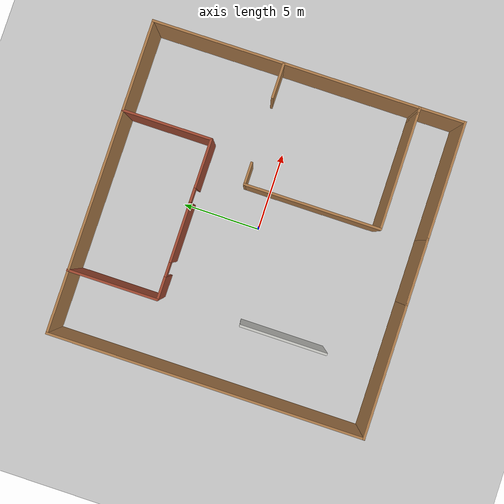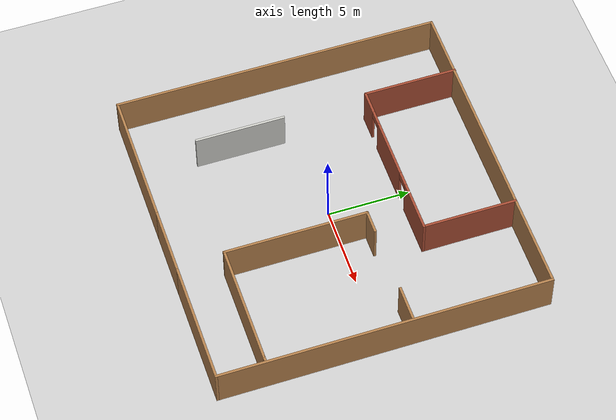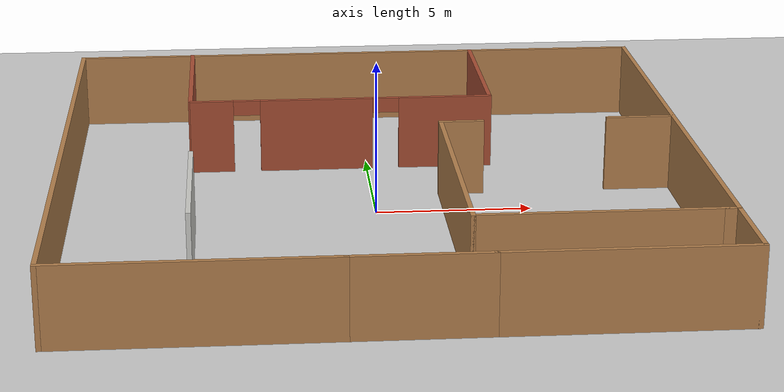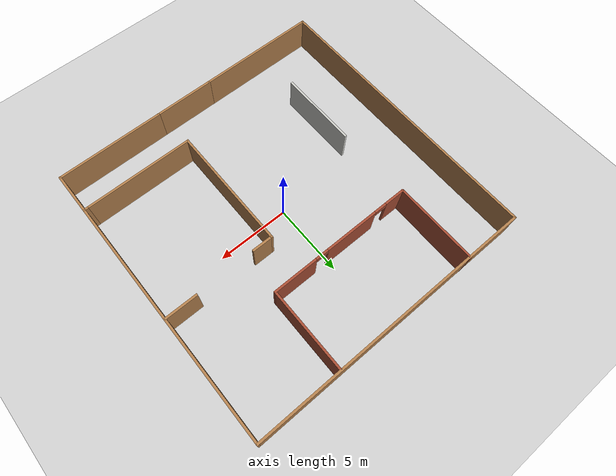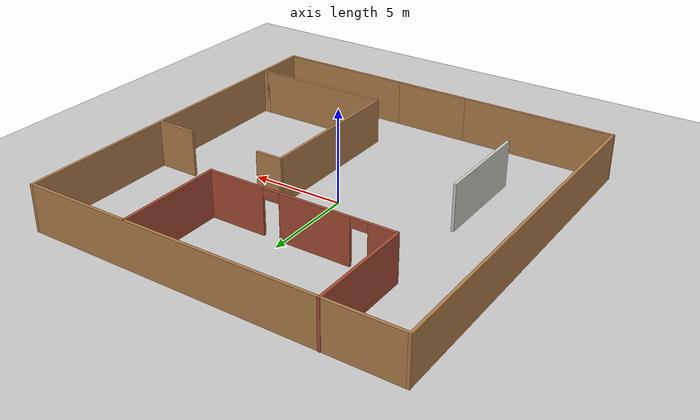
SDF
<?xml version="1.0"?>
<sdf version="1.6">
  <world name="default">

    <include>
      <uri>model://ground_plane</uri>
    </include>

    <include>
      <uri>model://sun</uri>
    </include>

    <scene>
      <shadows>false</shadows>
    </scene>

    <gui fullscreen='0'>
      <camera name='user_camera'>
        <pose frame=''>0.319654 -0.235002 9.29441 0 1.5138 0.009599</pose>
        <view_controller>orbit</view_controller>
        <projection_type>perspective</projection_type>
      </camera>
    </gui>

    <physics type="ode">
      <real_time_update_rate>1000.0</real_time_update_rate>
      <max_step_size>0.001</max_step_size>
      <real_time_factor>1</real_time_factor>
      <ode>
        <solver>
          <type>quick</type>
          <iters>150</iters>
          <precon_iters>0</precon_iters>
          <sor>1.400000</sor>
          <use_dynamic_moi_rescaling>1</use_dynamic_moi_rescaling>
        </solver>
        <constraints>
          <cfm>0.00001</cfm>
          <erp>0.2</erp>
          <contact_max_correcting_vel>2000.000000</contact_max_correcting_vel>
          <contact_surface_layer>0.01000</contact_surface_layer>
        </constraints>
      </ode>
    </physics>

    <model name="turtlebot3_house">
      <static>1</static>
      <include>
        <uri>model://Nxtwave_world</uri>
      </include>
    </model>

  </world>
</sdf>

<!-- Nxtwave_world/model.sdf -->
<sdf version='1.7'>
  <model name='Nxtwave_world'>
    <pose>0.017629 0.087442 0 0 -0 0</pose>
    <link name='Wall_0'>
      <collision name='Wall_0_Collision'>
        <geometry>
          <box>
            <size>4.25 0.15 2.5</size>
          </box>
        </geometry>
        <pose>0 0 1.25 0 -0 0</pose>
      </collision>
      <visual name='Wall_0_Visual'>
        <pose>0 0 1.25 0 -0 0</pose>
        <geometry>
          <box>
            <size>4.25 0.15 2.5</size>
          </box>
        </geometry>
        <material>
          <script>
            <uri>file://media/materials/scripts/gazebo.material</uri>
            <name>Gazebo/Wood</name>
          </script>
          <ambient>1 1 1 1</ambient>
        </material>
        <meta>
          <layer>0</layer>
        </meta>
      </visual>
      <pose>0.475 -9.93637 0 0 -0 0</pose>
    </link>
    <link name='Wall_10'>
      <collision name='Wall_10_Collision'>
        <geometry>
          <box>
            <size>5.75 0.15 2.5</size>
          </box>
        </geometry>
        <pose>0 0 1.25 0 -0 0</pose>
      </collision>
      <visual name='Wall_10_Visual'>
        <pose>0 0 1.25 0 -0 0</pose>
        <geometry>
          <box>
            <size>5.75 0.15 2.5</size>
          </box>
        </geometry>
        <material>
          <script>
            <uri>file://media/materials/scripts/gazebo.material</uri>
            <name>Gazebo/Bricks</name>
          </script>
          <ambient>1 1 1 1</ambient>
        </material>
        <meta>
          <layer>0</layer>
        </meta>
      </visual>
      <pose>-5.98179 7.13638 0 0 -0 1.5708</pose>
    </link>
    <link name='Wall_12'>
      <collision name='Wall_12_Collision'>
        <geometry>
          <box>
            <size>5.75 0.15 2.5</size>
          </box>
        </geometry>
        <pose>0 0 1.25 0 -0 0</pose>
      </collision>
      <visual name='Wall_12_Visual'>
        <pose>0 0 1.25 0 -0 0</pose>
        <geometry>
          <box>
            <size>5.75 0.15 2.5</size>
          </box>
        </geometry>
        <material>
          <script>
            <uri>file://media/materials/scripts/gazebo.material</uri>
            <name>Gazebo/Bricks</name>
          </script>
          <ambient>1 1 1 1</ambient>
        </material>
        <meta>
          <layer>0</layer>
        </meta>
      </visual>
      <pose>4.17051 7.0893 0 0 -0 -1.5708</pose>
    </link>
    <link name='Wall_13'>
      <pose>-0.879492 4.2893 0 0 -0 3.14159</pose>
      <visual name='Wall_13_Visual_0'>
        <pose>-3.53844 0 1.25 0 -0 0</pose>
        <geometry>
          <box>
            <size>3.17312 0.15 2.5</size>
          </box>
        </geometry>
        <material>
          <script>
            <uri>file://media/materials/scripts/gazebo.material</uri>
            <name>Gazebo/Bricks</name>
          </script>
          <ambient>1 1 1 1</ambient>
        </material>
        <meta>
          <layer>0</layer>
        </meta>
      </visual>
      <collision name='Wall_13_Collision_0'>
        <geometry>
          <box>
            <size>3.17312 0.15 2.5</size>
          </box>
        </geometry>
        <pose>-3.53844 0 1.25 0 -0 0</pose>
      </collision>
      <visual name='Wall_13_Visual_1'>
        <pose>0.853569 0 1.25 0 -0 0</pose>
        <geometry>
          <box>
            <size>3.81089 0.15 2.5</size>
          </box>
        </geometry>
        <material>
          <script>
            <uri>file://media/materials/scripts/gazebo.material</uri>
            <name>Gazebo/Bricks</name>
          </script>
          <ambient>1 1 1 1</ambient>
        </material>
        <meta>
          <layer>0</layer>
        </meta>
      </visual>
      <collision name='Wall_13_Collision_1'>
        <geometry>
          <box>
            <size>3.81089 0.15 2.5</size>
          </box>
        </geometry>
        <pose>0.853569 0 1.25 0 -0 0</pose>
      </collision>
      <visual name='Wall_13_Visual_2'>
        <pose>4.39201 0 1.25 0 -0 0</pose>
        <geometry>
          <box>
            <size>1.46598 0.15 2.5</size>
          </box>
        </geometry>
        <material>
          <script>
            <uri>file://media/materials/scripts/gazebo.material</uri>
            <name>Gazebo/Bricks</name>
          </script>
          <ambient>1 1 1 1</ambient>
        </material>
        <meta>
          <layer>0</layer>
        </meta>
      </visual>
      <collision name='Wall_13_Collision_2'>
        <geometry>
          <box>
            <size>1.46598 0.15 2.5</size>
          </box>
        </geometry>
        <pose>4.39201 0 1.25 0 -0 0</pose>
      </collision>
      <visual name='Wall_13_Visual_3'>
        <pose>-1.50188 0 2.25 0 -0 0</pose>
        <geometry>
          <box>
            <size>0.9 0.15 0.5</size>
          </box>
        </geometry>
        <material>
          <script>
            <uri>file://media/materials/scripts/gazebo.material</uri>
            <name>Gazebo/Bricks</name>
          </script>
          <ambient>1 1 1 1</ambient>
        </material>
        <meta>
          <layer>0</layer>
        </meta>
      </visual>
      <collision name='Wall_13_Collision_3'>
        <geometry>
          <box>
            <size>0.9 0.15 0.5</size>
          </box>
        </geometry>
        <pose>-1.50188 0 2.25 0 -0 0</pose>
      </collision>
      <visual name='Wall_13_Visual_4'>
        <pose>3.20902 0 2.25 0 -0 0</pose>
        <geometry>
          <box>
            <size>0.9 0.15 0.5</size>
          </box>
        </geometry>
        <material>
          <script>
            <uri>file://media/materials/scripts/gazebo.material</uri>
            <name>Gazebo/Bricks</name>
          </script>
          <ambient>1 1 1 1</ambient>
        </material>
        <meta>
          <layer>0</layer>
        </meta>
      </visual>
      <collision name='Wall_13_Collision_4'>
        <geometry>
          <box>
            <size>0.9 0.15 0.5</size>
          </box>
        </geometry>
        <pose>3.20902 0 2.25 0 -0 0</pose>
      </collision>
    </link>
    <link name='Wall_15'>
      <collision name='Wall_15_Collision'>
        <geometry>
          <box>
            <size>2.25 0.15 2.5</size>
          </box>
        </geometry>
        <pose>0 0 1.25 0 -0 0</pose>
      </collision>
      <visual name='Wall_15_Visual'>
        <pose>0 0 1.25 0 -0 0</pose>
        <geometry>
          <box>
            <size>2.25 0.15 2.5</size>
          </box>
        </geometry>
        <material>
          <script>
            <uri>file://media/materials/scripts/gazebo.material</uri>
            <name>Gazebo/Wood</name>
          </script>
          <ambient>1 1 1 1</ambient>
        </material>
        <meta>
          <layer>0</layer>
        </meta>
      </visual>
      <pose>8.81064 1.57701 0 0 -0 3.14159</pose>
    </link>
    <link name='Wall_17'>
      <collision name='Wall_17_Collision'>
        <geometry>
          <box>
            <size>8.75 0.15 2.5</size>
          </box>
        </geometry>
        <pose>0 0 1.25 0 -0 0</pose>
      </collision>
      <visual name='Wall_17_Visual'>
        <pose>0 0 1.25 0 -0 0</pose>
        <geometry>
          <box>
            <size>8.75 0.15 2.5</size>
          </box>
        </geometry>
        <material>
          <script>
            <uri>file://media/materials/scripts/gazebo.material</uri>
            <name>Gazebo/Wood</name>
          </script>
          <ambient>1 1 1 1</ambient>
        </material>
        <meta>
          <layer>0</layer>
        </meta>
      </visual>
      <pose>2.21308 -2.76726 0 0 -0 -1.5708</pose>
    </link>
    <link name='Wall_18'>
      <collision name='Wall_18_Collision'>
        <geometry>
          <box>
            <size>7.5 0.15 2.5</size>
          </box>
        </geometry>
        <pose>0 0 1.25 0 -0 0</pose>
      </collision>
      <visual name='Wall_18_Visual'>
        <pose>0 0 1.25 0 -0 0</pose>
        <geometry>
          <box>
            <size>7.5 0.15 2.5</size>
          </box>
        </geometry>
        <material>
          <script>
            <uri>file://media/materials/scripts/gazebo.material</uri>
            <name>Gazebo/Wood</name>
          </script>
          <ambient>1 1 1 1</ambient>
        </material>
        <meta>
          <layer>0</layer>
        </meta>
      </visual>
      <pose>5.88808 -7.06726 0 0 -0 0</pose>
    </link>
    <link name='Wall_19'>
      <collision name='Wall_19_Collision'>
        <geometry>
          <box>
            <size>0.5 0.15 2.5</size>
          </box>
        </geometry>
        <pose>0 0 1.25 0 -0 0</pose>
      </collision>
      <visual name='Wall_19_Visual'>
        <pose>0 0 1.25 0 -0 0</pose>
        <geometry>
          <box>
            <size>0.5 0.15 2.5</size>
          </box>
        </geometry>
        <material>
          <script>
            <uri>file://media/materials/scripts/gazebo.material</uri>
            <name>Gazebo/Wood</name>
          </script>
          <ambient>1 1 1 1</ambient>
        </material>
        <meta>
          <layer>0</layer>
        </meta>
      </visual>
      <pose>9.73808 -7.06726 0 0 -0 0</pose>
    </link>
    <link name='Wall_2'>
      <collision name='Wall_2_Collision'>
        <geometry>
          <box>
            <size>8.5 0.15 2.5</size>
          </box>
        </geometry>
        <pose>0 0 1.25 0 -0 0</pose>
      </collision>
      <visual name='Wall_2_Visual'>
        <pose>0 0 1.25 0 -0 0</pose>
        <geometry>
          <box>
            <size>8.5 0.15 2.5</size>
          </box>
        </geometry>
        <material>
          <script>
            <uri>file://media/materials/scripts/gazebo.material</uri>
            <name>Gazebo/Wood</name>
          </script>
          <ambient>1 1 1 1</ambient>
        </material>
        <meta>
          <layer>0</layer>
        </meta>
      </visual>
      <pose>-5.75 -9.93637 0 0 -0 3.14159</pose>
    </link>
    <link name='Wall_21'>
      <collision name='Wall_21_Collision'>
        <geometry>
          <box>
            <size>1.5 0.15 2.5</size>
          </box>
        </geometry>
        <pose>0 0 1.25 0 -0 0</pose>
      </collision>
      <visual name='Wall_21_Visual'>
        <pose>0 0 1.25 0 -0 0</pose>
        <geometry>
          <box>
            <size>1.5 0.15 2.5</size>
          </box>
        </geometry>
        <material>
          <script>
            <uri>file://media/materials/scripts/gazebo.material</uri>
            <name>Gazebo/Wood</name>
          </script>
          <ambient>1 1 1 1</ambient>
        </material>
        <meta>
          <layer>0</layer>
        </meta>
      </visual>
      <pose>2.88808 1.53274 0 0 -0 0</pose>
    </link>
    <link name='Wall_3'>
      <collision name='Wall_3_Collision'>
        <geometry>
          <box>
            <size>20 0.15 2.5</size>
          </box>
        </geometry>
        <pose>0 0 1.25 0 -0 0</pose>
      </collision>
      <visual name='Wall_3_Visual'>
        <pose>0 0 1.25 0 -0 0</pose>
        <geometry>
          <box>
            <size>20 0.15 2.5</size>
          </box>
        </geometry>
        <material>
          <script>
            <uri>file://media/materials/scripts/gazebo.material</uri>
            <name>Gazebo/Wood</name>
          </script>
          <ambient>1 1 1 1</ambient>
        </material>
        <meta>
          <layer>0</layer>
        </meta>
      </visual>
      <pose>-9.925 -0.011375 0 0 -0 1.5708</pose>
    </link>
    <link name='Wall_4'>
      <collision name='Wall_4_Collision'>
        <geometry>
          <box>
            <size>20 0.15 2.5</size>
          </box>
        </geometry>
        <pose>0 0 1.25 0 -0 0</pose>
      </collision>
      <visual name='Wall_4_Visual'>
        <pose>0 0 1.25 0 -0 0</pose>
        <geometry>
          <box>
            <size>20 0.15 2.5</size>
          </box>
        </geometry>
        <material>
          <script>
            <uri>file://media/materials/scripts/gazebo.material</uri>
            <name>Gazebo/Wood</name>
          </script>
          <ambient>1 1 1 1</ambient>
        </material>
        <meta>
          <layer>0</layer>
        </meta>
      </visual>
      <pose>0 9.91362 0 0 -0 0</pose>
    </link>
    <link name='Wall_5'>
      <collision name='Wall_5_Collision'>
        <geometry>
          <box>
            <size>20 0.15 2.5</size>
          </box>
        </geometry>
        <pose>0 0 1.25 0 -0 0</pose>
      </collision>
      <visual name='Wall_5_Visual'>
        <pose>0 0 1.25 0 -0 0</pose>
        <geometry>
          <box>
            <size>20 0.15 2.5</size>
          </box>
        </geometry>
        <material>
          <script>
            <uri>file://media/materials/scripts/gazebo.material</uri>
            <name>Gazebo/Wood</name>
          </script>
          <ambient>1 1 1 1</ambient>
        </material>
        <meta>
          <layer>0</layer>
        </meta>
      </visual>
      <pose>9.925 -0.011375 0 0 -0 -1.5708</pose>
    </link>
    <link name='Wall_6'>
      <collision name='Wall_6_Collision'>
        <geometry>
          <box>
            <size>7.55 0.15 2.5</size>
          </box>
        </geometry>
        <pose>0 0 1.25 0 -0 0</pose>
      </collision>
      <visual name='Wall_6_Visual'>
        <pose>0 0 1.25 0 -0 0</pose>
        <geometry>
          <box>
            <size>7.55 0.15 2.5</size>
          </box>
        </geometry>
        <material>
          <script>
            <uri>file://media/materials/scripts/gazebo.material</uri>
            <name>Gazebo/Wood</name>
          </script>
          <ambient>1 1 1 1</ambient>
        </material>
        <meta>
          <layer>0</layer>
        </meta>
      </visual>
      <pose>6.225 -9.93637 0 0 -0 3.14159</pose>
    </link>
    <link name='Wall_8'>
      <collision name='Wall_8_Collision'>
        <geometry>
          <box>
            <size>5.5 0.15 2.5</size>
          </box>
        </geometry>
        <pose>0 0 1.25 0 -0 0</pose>
      </collision>
      <visual name='Wall_8_Visual'>
        <pose>0 0 1.25 0 -0 0</pose>
        <geometry>
          <box>
            <size>5.5 0.15 2.5</size>
          </box>
        </geometry>
        <material>
          <script>
            <uri>file://media/materials/scripts/gazebo.material</uri>
            <name>Gazebo/CeilingTiled</name>
          </script>
          <ambient>1 1 1 1</ambient>
        </material>
        <meta>
          <layer>0</layer>
        </meta>
      </visual>
      <pose>-5.88925 -3.58799 0 0 -0 1.5708</pose>
    </link>
    <static>1</static>
  </model>
</sdf>
